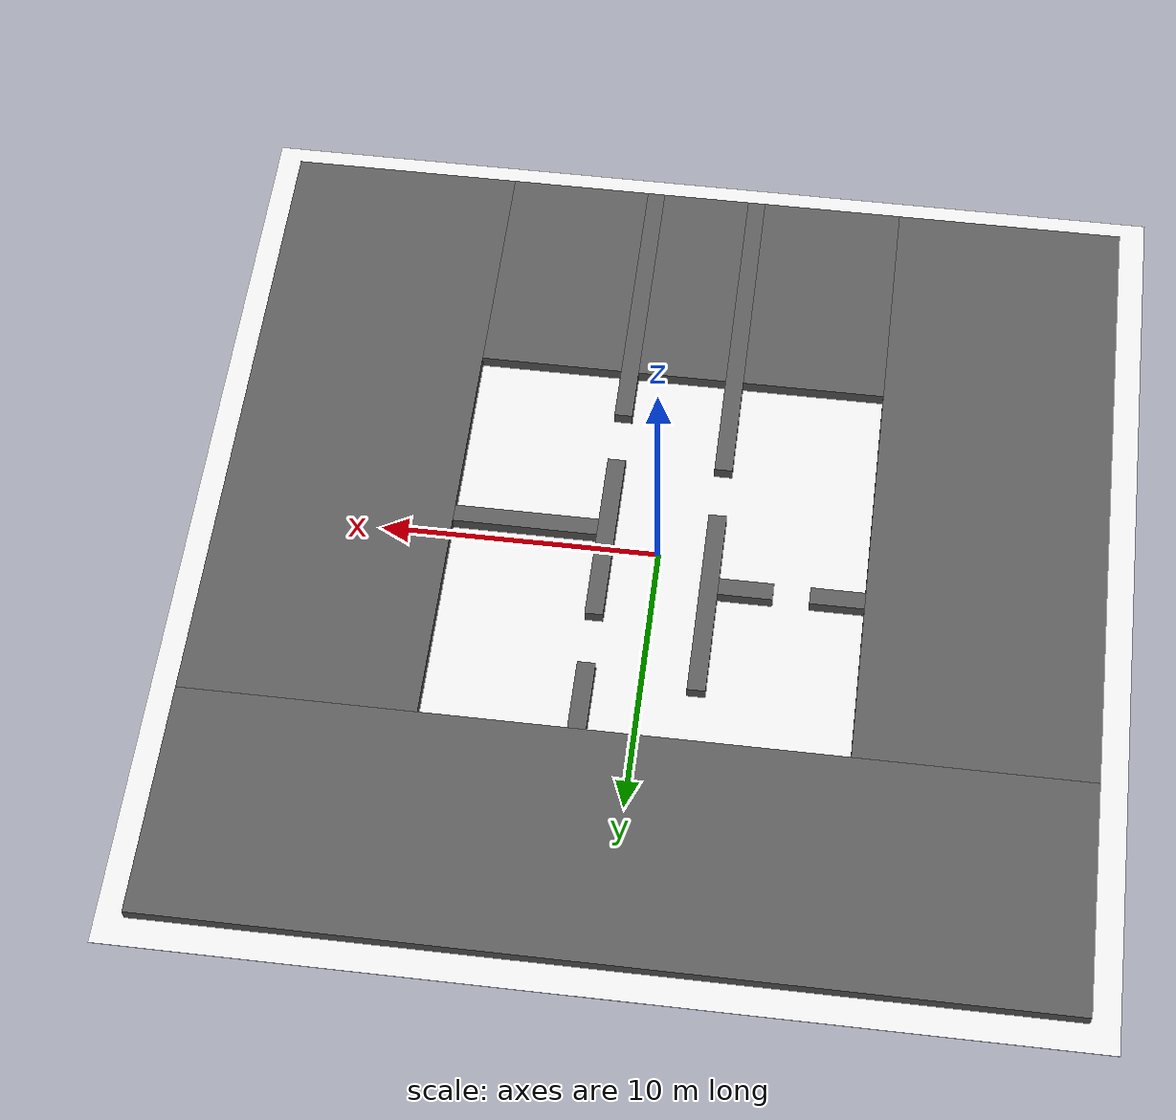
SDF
<?xml version="1.0"?>
<sdf version="1.9">
  <world name="test_map_l3">
    <plugin filename="ignition-gazebo-physics-system" name="ignition::gazebo::systems::Physics"/>
    <plugin filename="ignition-gazebo-user-commands-system" name="ignition::gazebo::systems::UserCommands"/>
    <plugin filename="ignition-gazebo-scene-broadcaster-system" name="ignition::gazebo::systems::SceneBroadcaster"/>
    <plugin filename="ignition-gazebo-sensors-system" name="ignition::gazebo::systems::Sensors">
      <render_engine>ogre2</render_engine>
    </plugin>
    <light name="sun" type="directional">
      <cast_shadows>true</cast_shadows>
      <pose>0 0 10 0 0 0</pose>
      <diffuse>0.8 0.8 0.8 1</diffuse>
      <specular>0.2 0.2 0.2 1</specular>
      <direction>-0.5 0.1 -0.9</direction>
    </light>
    <model name="ground_plane">
      <static>true</static>
      <link name="link">
        <collision name="collision">
          <geometry>
            <box><size>33.850000 33.850000 0.02</size></box>
          </geometry>
        </collision>
        <visual name="visual">
          <geometry>
            <box><size>33.850000 33.850000 0.02</size></box>
          </geometry>
          <material><ambient>0.9 0.9 0.9 1</ambient><diffuse>0.9 0.9 0.9 1</diffuse></material>
        </visual>
      </link>
    </model>
    <model name="rl_explore_obstacles">
      <static>true</static>
      <link name="wall_0000">
        <pose>0.000000 11.700000 0.250000 0 0 0</pose>
        <collision name="collision">
          <geometry>
            <box><size>31.850000 8.450000 0.500000</size></box>
          </geometry>
        </collision>
        <visual name="visual">
          <geometry>
            <box><size>31.850000 8.450000 0.500000</size></box>
          </geometry>
          <material><ambient>0.25 0.25 0.25 1</ambient><diffuse>0.35 0.35 0.35 1</diffuse></material>
        </visual>
      </link>
      <link name="wall_0001">
        <pose>-11.700000 -4.225000 0.250000 0 0 0</pose>
        <collision name="collision">
          <geometry>
            <box><size>8.450000 23.400000 0.500000</size></box>
          </geometry>
        </collision>
        <visual name="visual">
          <geometry>
            <box><size>8.450000 23.400000 0.500000</size></box>
          </geometry>
          <material><ambient>0.25 0.25 0.25 1</ambient><diffuse>0.35 0.35 0.35 1</diffuse></material>
        </visual>
      </link>
      <link name="wall_0002">
        <pose>1.950000 6.175000 0.250000 0 0 0</pose>
        <collision name="collision">
          <geometry>
            <box><size>0.650000 2.600000 0.500000</size></box>
          </geometry>
        </collision>
        <visual name="visual">
          <geometry>
            <box><size>0.650000 2.600000 0.500000</size></box>
          </geometry>
          <material><ambient>0.25 0.25 0.25 1</ambient><diffuse>0.35 0.35 0.35 1</diffuse></material>
        </visual>
      </link>
      <link name="wall_0003">
        <pose>11.700000 -4.225000 0.250000 0 0 0</pose>
        <collision name="collision">
          <geometry>
            <box><size>8.450000 23.400000 0.500000</size></box>
          </geometry>
        </collision>
        <visual name="visual">
          <geometry>
            <box><size>8.450000 23.400000 0.500000</size></box>
          </geometry>
          <material><ambient>0.25 0.25 0.25 1</ambient><diffuse>0.35 0.35 0.35 1</diffuse></material>
        </visual>
      </link>
      <link name="wall_0004">
        <pose>-1.950000 1.950000 0.250000 0 0 0</pose>
        <collision name="collision">
          <geometry>
            <box><size>0.650000 7.150000 0.500000</size></box>
          </geometry>
        </collision>
        <visual name="visual">
          <geometry>
            <box><size>0.650000 7.150000 0.500000</size></box>
          </geometry>
          <material><ambient>0.25 0.25 0.25 1</ambient><diffuse>0.35 0.35 0.35 1</diffuse></material>
        </visual>
      </link>
      <link name="wall_0005">
        <pose>1.950000 -0.325000 0.250000 0 0 0</pose>
        <collision name="collision">
          <geometry>
            <box><size>0.650000 6.500000 0.500000</size></box>
          </geometry>
        </collision>
        <visual name="visual">
          <geometry>
            <box><size>0.650000 6.500000 0.500000</size></box>
          </geometry>
          <material><ambient>0.25 0.25 0.25 1</ambient><diffuse>0.35 0.35 0.35 1</diffuse></material>
        </visual>
      </link>
      <link name="wall_0006">
        <pose>-6.500000 1.300000 0.250000 0 0 0</pose>
        <collision name="collision">
          <geometry>
            <box><size>1.950000 0.650000 0.500000</size></box>
          </geometry>
        </collision>
        <visual name="visual">
          <geometry>
            <box><size>1.950000 0.650000 0.500000</size></box>
          </geometry>
          <material><ambient>0.25 0.25 0.25 1</ambient><diffuse>0.35 0.35 0.35 1</diffuse></material>
        </visual>
      </link>
      <link name="wall_0007">
        <pose>-3.250000 1.300000 0.250000 0 0 0</pose>
        <collision name="collision">
          <geometry>
            <box><size>1.950000 0.650000 0.500000</size></box>
          </geometry>
        </collision>
        <visual name="visual">
          <geometry>
            <box><size>1.950000 0.650000 0.500000</size></box>
          </geometry>
          <material><ambient>0.25 0.25 0.25 1</ambient><diffuse>0.35 0.35 0.35 1</diffuse></material>
        </visual>
      </link>
      <link name="wall_0008">
        <pose>4.875000 -0.650000 0.250000 0 0 0</pose>
        <collision name="collision">
          <geometry>
            <box><size>5.200000 0.650000 0.500000</size></box>
          </geometry>
        </collision>
        <visual name="visual">
          <geometry>
            <box><size>5.200000 0.650000 0.500000</size></box>
          </geometry>
          <material><ambient>0.25 0.25 0.25 1</ambient><diffuse>0.35 0.35 0.35 1</diffuse></material>
        </visual>
      </link>
      <link name="wall_0009">
        <pose>-1.950000 -9.750000 0.250000 0 0 0</pose>
        <collision name="collision">
          <geometry>
            <box><size>0.650000 12.350000 0.500000</size></box>
          </geometry>
        </collision>
        <visual name="visual">
          <geometry>
            <box><size>0.650000 12.350000 0.500000</size></box>
          </geometry>
          <material><ambient>0.25 0.25 0.25 1</ambient><diffuse>0.35 0.35 0.35 1</diffuse></material>
        </visual>
      </link>
      <link name="wall_0010">
        <pose>1.950000 -10.725000 0.250000 0 0 0</pose>
        <collision name="collision">
          <geometry>
            <box><size>0.650000 10.400000 0.500000</size></box>
          </geometry>
        </collision>
        <visual name="visual">
          <geometry>
            <box><size>0.650000 10.400000 0.500000</size></box>
          </geometry>
          <material><ambient>0.25 0.25 0.25 1</ambient><diffuse>0.35 0.35 0.35 1</diffuse></material>
        </visual>
      </link>
      <link name="wall_0011">
        <pose>-4.875000 -11.700000 0.250000 0 0 0</pose>
        <collision name="collision">
          <geometry>
            <box><size>5.200000 8.450000 0.500000</size></box>
          </geometry>
        </collision>
        <visual name="visual">
          <geometry>
            <box><size>5.200000 8.450000 0.500000</size></box>
          </geometry>
          <material><ambient>0.25 0.25 0.25 1</ambient><diffuse>0.35 0.35 0.35 1</diffuse></material>
        </visual>
      </link>
      <link name="wall_0012">
        <pose>0.000000 -11.700000 0.250000 0 0 0</pose>
        <collision name="collision">
          <geometry>
            <box><size>3.250000 8.450000 0.500000</size></box>
          </geometry>
        </collision>
        <visual name="visual">
          <geometry>
            <box><size>3.250000 8.450000 0.500000</size></box>
          </geometry>
          <material><ambient>0.25 0.25 0.25 1</ambient><diffuse>0.35 0.35 0.35 1</diffuse></material>
        </visual>
      </link>
      <link name="wall_0013">
        <pose>4.875000 -11.700000 0.250000 0 0 0</pose>
        <collision name="collision">
          <geometry>
            <box><size>5.200000 8.450000 0.500000</size></box>
          </geometry>
        </collision>
        <visual name="visual">
          <geometry>
            <box><size>5.200000 8.450000 0.500000</size></box>
          </geometry>
          <material><ambient>0.25 0.25 0.25 1</ambient><diffuse>0.35 0.35 0.35 1</diffuse></material>
        </visual>
      </link>
    </model>
  </world>
</sdf>
